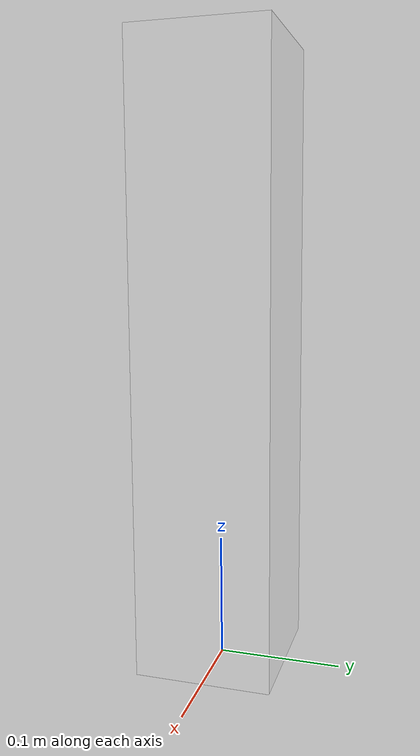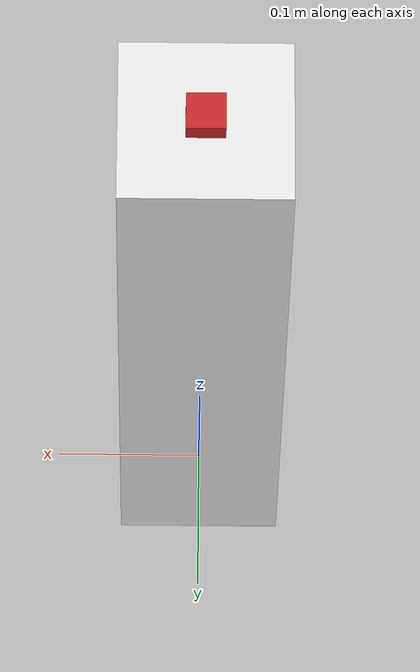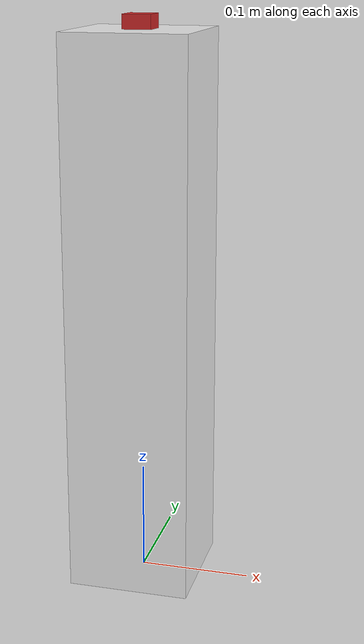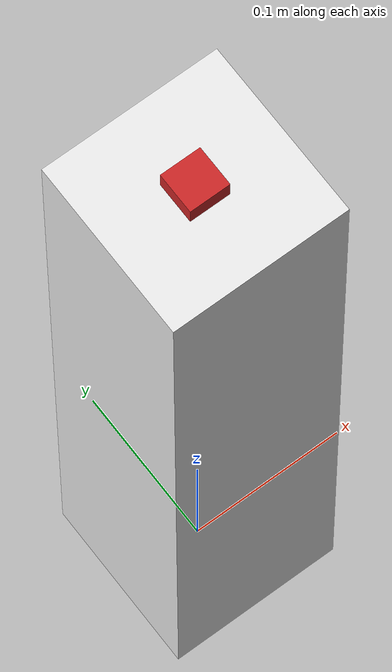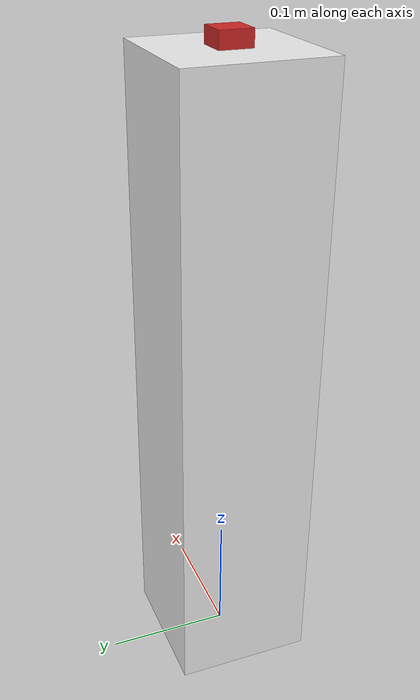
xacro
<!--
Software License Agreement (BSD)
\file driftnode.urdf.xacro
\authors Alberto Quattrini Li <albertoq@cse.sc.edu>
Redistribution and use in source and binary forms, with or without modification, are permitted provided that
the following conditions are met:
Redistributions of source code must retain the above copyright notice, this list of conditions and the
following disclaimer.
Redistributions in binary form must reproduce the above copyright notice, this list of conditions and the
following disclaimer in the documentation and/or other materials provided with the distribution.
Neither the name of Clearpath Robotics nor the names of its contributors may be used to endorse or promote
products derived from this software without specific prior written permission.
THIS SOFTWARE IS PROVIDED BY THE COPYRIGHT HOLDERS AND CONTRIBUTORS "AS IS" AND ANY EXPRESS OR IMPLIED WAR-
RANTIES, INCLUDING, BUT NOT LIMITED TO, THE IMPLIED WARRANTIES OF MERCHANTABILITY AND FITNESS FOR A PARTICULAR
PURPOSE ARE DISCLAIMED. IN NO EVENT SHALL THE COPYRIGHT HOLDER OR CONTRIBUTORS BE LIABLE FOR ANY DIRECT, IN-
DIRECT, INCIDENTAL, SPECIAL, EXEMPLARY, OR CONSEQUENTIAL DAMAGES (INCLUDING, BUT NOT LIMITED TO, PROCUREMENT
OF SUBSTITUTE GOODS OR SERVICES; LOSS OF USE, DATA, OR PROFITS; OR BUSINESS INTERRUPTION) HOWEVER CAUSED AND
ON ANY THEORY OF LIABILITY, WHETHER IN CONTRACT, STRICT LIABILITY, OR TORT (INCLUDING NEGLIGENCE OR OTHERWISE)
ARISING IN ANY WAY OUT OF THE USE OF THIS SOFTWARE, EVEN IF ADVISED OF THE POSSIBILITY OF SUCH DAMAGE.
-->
<?xml version="1.0"?>
<robot name="driftnode" xmlns:xacro="http://ros.org/wiki/xacro">

  <xacro:include filename="$(find driftnode_description)/urdf/driftnode.urdf.xacro" />
  <xacro:driftnode />

</robot>

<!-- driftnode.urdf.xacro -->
<robot name="driftnode" xmlns:xacro="http://ros.org/wiki/xacro">

  <property name="M_PI" value="3.14159"/>

  <!-- Base Size -->
  <property name="base_x_size" value="0.11" />
  <property name="base_y_size" value="0.11" />
  <property name="base_z_size" value="0.5" />

  <xacro:macro name="driftnode">

    <!-- Base footprint is bottom disk of the robot where the camera is -->
    <link name="base_footprint"/>

    <!-- Base link is the center of the driftnode's tube -->
    <link name="base_link">
      <visual>
        <origin xyz="0 0 0" rpy="0 0 0" />
        <geometry>
          <box size="${base_x_size} ${base_y_size} ${base_z_size}"/>
        </geometry>
        <material name="white"/>
      </visual>
      <collision>
        <origin xyz="0 0 ${base_z_size/4}" rpy="0 0 0" />
        <geometry>
          <!--box size="${base_x_size} ${base_y_size} ${base_z_size}"/-->
          <cylinder radius="${base_x_size}" length="${base_z_size}"/>
        </geometry>
      </collision>
      <collision>
        <origin xyz="0 0 ${base_z_size*3/4}" rpy="0 0 0" />
        <geometry>
          <cylinder radius="${base_x_size}" length="${base_z_size}"/>
        </geometry>
      </collision>
    </link>
    <joint name="base_joint" type="fixed">
      <origin xyz="0 0 ${base_z_size / 2}" rpy="0 0 0" />
      <parent link="base_footprint" />
      <child link="base_link" />
    </joint>

    <!-- Interial link stores the robot's inertial information -->
    <link name="inertial_link">
      <inertial>
        <mass value="0.001" />
        <origin xyz="0 0 0" />
        <inertia ixx="0.0001" ixy="0" ixz="0"
                 iyy="0.000001" iyz="0"
                 izz="0.0001" />
      </inertial>
    </link>

    <joint name="inertial_joint" type="fixed">
      <origin xyz="0 0 0" rpy="0 0 0" />
      <parent link="base_link" />
      <child link="inertial_link" />
    </joint>

    <!-- IMU Link is the mounting position for the IMU.-->
    <!-- Can be modified with environment variables in /etc/ros/setup.bash -->
    <link name="imu_link"/>
    <joint name="imu_joint" type="fixed">
      <origin xyz="$(optenv DRIFTNODE_IMU_XYZ -0.06 0 -0.048)" rpy="$(optenv DRIFTNODE_IMU_RPY 1.57095 0 0)" />
      <parent link="base_link" />
      <child link="imu_link" />
    </joint>

    <!-- Camera -->
    <joint name="camera_joint" type="fixed">
      <axis xyz="0 1 0"/>
      <parent link="base_footprint"/>
      <child link="camera_optical"/>
      <origin xyz="0.0 -0.018 0" rpy="0.0 ${M_PI} 1.5708"/>
    </joint>
    <link name="camera_optical">
      <collision>
        <origin xyz="0 -0.018 0" rpy="0 0 0"/>
        <geometry>
          <box size="0.02 0.02 0.02"/>
        </geometry>
      </collision>
      <visual>
        <origin xyz="0 -0.018 0" rpy="0 0 0"/>
        <geometry>
          <box size="0.02 0.02 0.02"/>
        </geometry>
         <material name="red"/>
      </visual>

      <inertial>
        <mass value="1e-5" />
        <origin xyz="0 0 0" rpy="0 0 0"/>
        <inertia ixx="1e-6" ixy="0" ixz="0" iyy="1e-6" iyz="0" izz="1e-6" />
      </inertial>
    </link>

    <!-- GPS -->
    <joint name="gps_joint" type="fixed">
      <parent link="base_link"/>
      <child link="gps_link"/>
      <origin xyz="0 0 ${base_z_size / 2}" rpy="0 0 0" />
    </joint>
    <link name="gps_link">
      <collision>
        <origin xyz="0 0 0" rpy="0 0 0"/>
        <geometry>
          <box size="0.025 0.025 0.025"/>
        </geometry>
      </collision>
      <visual>
        <origin xyz="0 0 0" rpy="0 0 0"/>
        <geometry>
          <box size="0.025 0.025 0.025"/>
        </geometry>
        <material name="red"/>
      </visual>

      <inertial>
        <mass value="1e-5" />
        <origin xyz="0 0 0" rpy="0 0 0"/>
        <inertia ixx="1e-6" ixy="0" ixz="0" iyy="1e-6" iyz="0" izz="1e-6" />
      </inertial>
    </link>

  </xacro:macro>

</robot>
